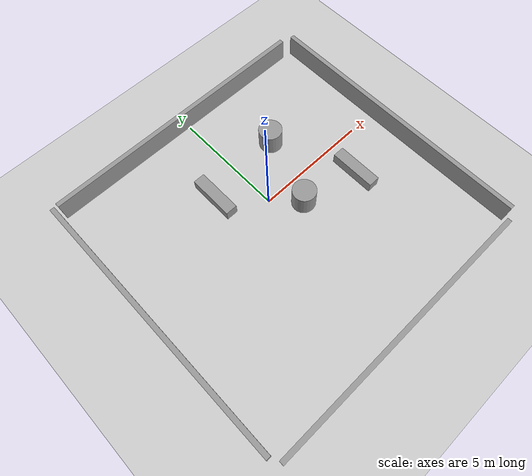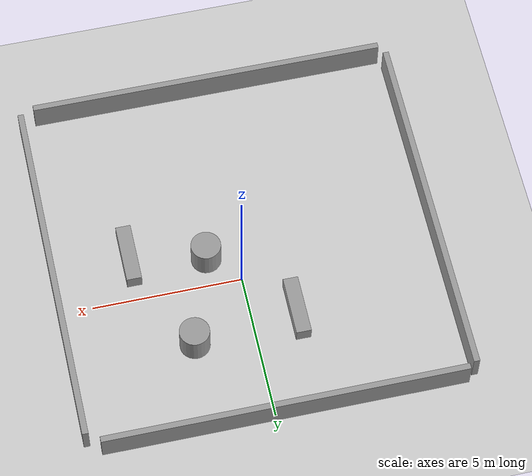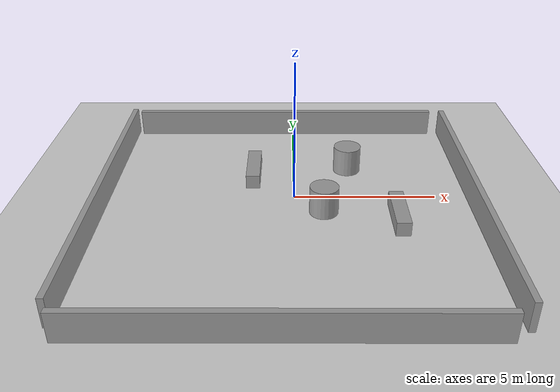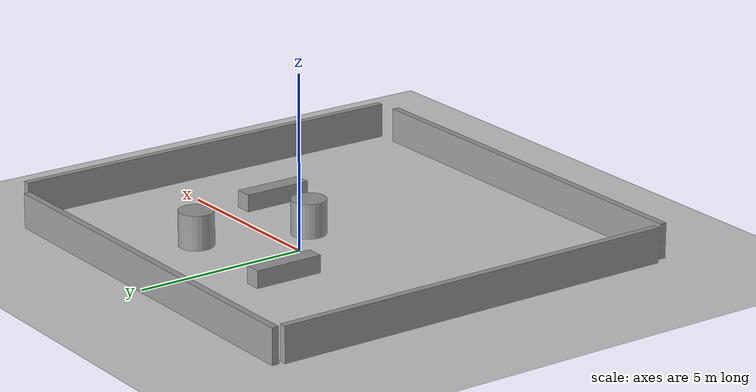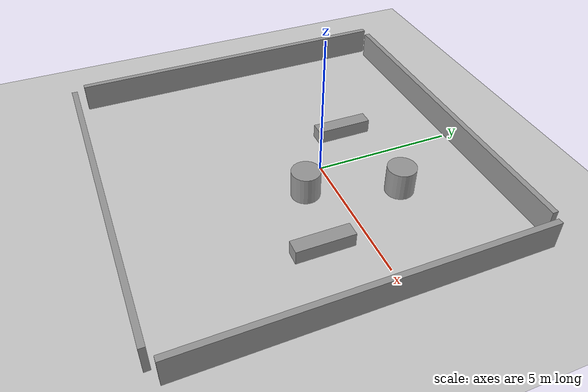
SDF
<sdf version="1.7">
 <world name="default">
  <scene><ambient>0.4 0.4 0.4 1</ambient><background>0.7 0.7 0.7 1</background><shadows>1</shadows></scene>
  <light name="sun" type="directional">
   <pose>0 0 10 0 -0 0</pose>
   <diffuse>0.8 0.8 0.8 1</diffuse>
   <specular>0.2 0.2 0.2 1</specular>
   <attenuation>
    <range>1000</range>
    <constant>0.9</constant>
    <linear>0.01</linear>
    <quadratic>0.001</quadratic>
   </attenuation>
   <direction>-0.5 0.1 -0.9</direction>
   <spot><inner_angle>0</inner_angle><outer_angle>0</outer_angle><falloff>0</falloff></spot>
  </light>
  <model name="ground_plane">
   <static>1</static>
   <link name="link">
    <collision name="collision">
     <geometry><plane><normal>0 0 1</normal><size>100 100</size></plane></geometry>
     <surface>
      <contact><collide_bitmask>65535</collide_bitmask></contact>
      <friction><ode><mu>100</mu><mu2>50</mu2></ode></friction>
     </surface>
    </collision>
    <visual name="visual">
     <cast_shadows>0</cast_shadows>
     <geometry><plane><normal>0 0 1</normal><size>100 100</size></plane></geometry>
     <material>
      <script><uri>file://media/materials/scripts/gazebo.material</uri><name>Gazebo/Grey</name></script>
     </material>
    </visual>
   </link>
  </model>
  <physics type="ode">
   <real_time_update_rate>1000</real_time_update_rate>
   <max_step_size>0.001</max_step_size>
   <real_time_factor>1</real_time_factor>
   <ode>
    <solver>
     <type>quick</type>
     <iters>150</iters>
     <precon_iters>0</precon_iters>
     <sor>1.4</sor>
     <use_dynamic_moi_rescaling>1</use_dynamic_moi_rescaling>
    </solver>
    <constraints>
     <cfm>1e-05</cfm>
     <erp>0.2</erp>
     <contact_max_correcting_vel>2000</contact_max_correcting_vel>
     <contact_surface_layer>0.01</contact_surface_layer>
    </constraints>
   </ode>
  </physics>
  <gravity>0 0 -9.8</gravity>
  <magnetic_field>6e-06 2.3e-05 -4.2e-05</magnetic_field>
  <atmosphere type="adiabatic"/>
  <spherical_coordinates>
   <surface_model>EARTH_WGS84</surface_model>
   <latitude_deg>0</latitude_deg>
   <longitude_deg>0</longitude_deg>
   <elevation>0</elevation>
   <heading_deg>0</heading_deg>
  </spherical_coordinates>
  <model name="grey_wall_1">
   <link name="link">
    <pose>0 0 1.4 0 -0 0</pose>
    <inertial>
     <mass>1</mass>
     <inertia><ixx>1</ixx><ixy>0</ixy><ixz>0</ixz><iyy>1</iyy><iyz>0</iyz><izz>1</izz></inertia>
    </inertial>
    <visual name="visual">
     <cast_shadows>0</cast_shadows>
     <geometry><box><size>12 0.2 1</size></box></geometry>
     <material>
      <script>
       <uri>model://grey_wall/materials/scripts</uri>
       <uri>model://grey_wall/materials/textures</uri>
       <name>vrc/grey_wall</name>
      </script>
      <shader type="pixel"><normal_map>__default__</normal_map></shader>
      <ambient>1 1 1 1</ambient>
      <diffuse>1 1 1 1</diffuse>
      <specular>0 0 0 1</specular>
      <emissive>0 0 0 1</emissive>
     </material>
    </visual>
    <collision name="collision">
     <geometry><box><size>12 0.2 1</size></box></geometry>
     <surface>
      <friction>
       <ode><mu>1</mu><mu2>1</mu2><fdir1>0 0 0</fdir1><slip1>0</slip1><slip2>0</slip2></ode>
       <torsional>
        <coefficient>1</coefficient>
        <patch_radius>0</patch_radius>
        <surface_radius>0</surface_radius>
        <use_patch_radius>1</use_patch_radius>
        <ode><slip>0</slip></ode>
       </torsional>
      </friction>
      <bounce><restitution_coefficient>0</restitution_coefficient><threshold>1e+06</threshold></bounce>
      <contact>
       <collide_without_contact>0</collide_without_contact>
       <collide_without_contact_bitmask>1</collide_without_contact_bitmask>
       <collide_bitmask>1</collide_bitmask>
       <ode>
        <soft_cfm>0</soft_cfm>
        <soft_erp>0.2</soft_erp>
        <kp>1e+13</kp>
        <kd>1</kd>
        <max_vel>0.01</max_vel>
        <min_depth>0</min_depth>
       </ode>
       <bullet>
        <split_impulse>1</split_impulse>
        <split_impulse_penetration_threshold>-0.01</split_impulse_penetration_threshold>
        <soft_cfm>0</soft_cfm>
        <soft_erp>0.2</soft_erp>
        <kp>1e+13</kp>
        <kd>1</kd>
       </bullet>
      </contact>
     </surface>
    </collision>
   </link>
   <static>1</static>
   <pose>-0.343254 5.11345 -0.824132 0 -0 0</pose>
  </model>
  <model name="grey_wall_1_clone">
   <link name="link">
    <pose>0 0 1.4 0 -0 0</pose>
    <inertial>
     <mass>1</mass>
     <inertia><ixx>1</ixx><ixy>0</ixy><ixz>0</ixz><iyy>1</iyy><iyz>0</iyz><izz>1</izz></inertia>
    </inertial>
    <visual name="visual">
     <cast_shadows>0</cast_shadows>
     <geometry><box><size>12 0.2 1</size></box></geometry>
     <material>
      <script>
       <uri>model://grey_wall/materials/scripts</uri>
       <uri>model://grey_wall/materials/textures</uri>
       <name>vrc/grey_wall</name>
      </script>
      <shader type="pixel"><normal_map>__default__</normal_map></shader>
      <ambient>1 1 1 1</ambient>
      <diffuse>1 1 1 1</diffuse>
      <specular>0 0 0 1</specular>
      <emissive>0 0 0 1</emissive>
     </material>
    </visual>
    <collision name="collision">
     <geometry><box><size>12 0.2 1</size></box></geometry>
     <surface>
      <friction>
       <ode><mu>1</mu><mu2>1</mu2><fdir1>0 0 0</fdir1><slip1>0</slip1><slip2>0</slip2></ode>
       <torsional>
        <coefficient>1</coefficient>
        <patch_radius>0</patch_radius>
        <surface_radius>0</surface_radius>
        <use_patch_radius>1</use_patch_radius>
        <ode><slip>0</slip></ode>
       </torsional>
      </friction>
      <bounce><restitution_coefficient>0</restitution_coefficient><threshold>1e+06</threshold></bounce>
      <contact>
       <collide_without_contact>0</collide_without_contact>
       <collide_without_contact_bitmask>1</collide_without_contact_bitmask>
       <collide_bitmask>1</collide_bitmask>
       <ode>
        <soft_cfm>0</soft_cfm>
        <soft_erp>0.2</soft_erp>
        <kp>1e+13</kp>
        <kd>1</kd>
        <max_vel>0.01</max_vel>
        <min_depth>0</min_depth>
       </ode>
       <bullet>
        <split_impulse>1</split_impulse>
        <split_impulse_penetration_threshold>-0.01</split_impulse_penetration_threshold>
        <soft_cfm>0</soft_cfm>
        <soft_erp>0.2</soft_erp>
        <kp>1e+13</kp>
        <kd>1</kd>
       </bullet>
      </contact>
     </surface>
    </collision>
   </link>
   <static>1</static>
   <pose>-0.36456 -7.3355 -0.763552 0 -0 0</pose>
  </model>
  <model name="grey_wall_1_clone_0">
   <link name="link">
    <pose>0 0 1.4 0 -0 0</pose>
    <inertial>
     <mass>1</mass>
     <inertia><ixx>1</ixx><ixy>0</ixy><ixz>0</ixz><iyy>1</iyy><iyz>0</iyz><izz>1</izz></inertia>
    </inertial>
    <visual name="visual">
     <cast_shadows>0</cast_shadows>
     <geometry><box><size>12 0.2 1</size></box></geometry>
     <material>
      <script>
       <uri>model://grey_wall/materials/scripts</uri>
       <uri>model://grey_wall/materials/textures</uri>
       <name>vrc/grey_wall</name>
      </script>
      <shader type="pixel"><normal_map>__default__</normal_map></shader>
      <ambient>1 1 1 1</ambient>
      <diffuse>1 1 1 1</diffuse>
      <specular>0 0 0 1</specular>
      <emissive>0 0 0 1</emissive>
     </material>
    </visual>
    <collision name="collision">
     <geometry><box><size>12 0.2 1</size></box></geometry>
     <surface>
      <friction>
       <ode><mu>1</mu><mu2>1</mu2><fdir1>0 0 0</fdir1><slip1>0</slip1><slip2>0</slip2></ode>
       <torsional>
        <coefficient>1</coefficient>
        <patch_radius>0</patch_radius>
        <surface_radius>0</surface_radius>
        <use_patch_radius>1</use_patch_radius>
        <ode><slip>0</slip></ode>
       </torsional>
      </friction>
      <bounce><restitution_coefficient>0</restitution_coefficient><threshold>1e+06</threshold></bounce>
      <contact>
       <collide_without_contact>0</collide_without_contact>
       <collide_without_contact_bitmask>1</collide_without_contact_bitmask>
       <collide_bitmask>1</collide_bitmask>
       <ode>
        <soft_cfm>0</soft_cfm>
        <soft_erp>0.2</soft_erp>
        <kp>1e+13</kp>
        <kd>1</kd>
        <max_vel>0.01</max_vel>
        <min_depth>0</min_depth>
       </ode>
       <bullet>
        <split_impulse>1</split_impulse>
        <split_impulse_penetration_threshold>-0.01</split_impulse_penetration_threshold>
        <soft_cfm>0</soft_cfm>
        <soft_erp>0.2</soft_erp>
        <kp>1e+13</kp>
        <kd>1</kd>
       </bullet>
      </contact>
     </surface>
    </collision>
   </link>
   <static>1</static>
   <pose>-6.55257 -0.953326 -0.707581 0 -0 1.57157</pose>
  </model>
  <model name="grey_wall_1_clone_0_clone">
   <link name="link">
    <pose>0 0 1.4 0 -0 0</pose>
    <inertial>
     <mass>1</mass>
     <inertia><ixx>1</ixx><ixy>0</ixy><ixz>0</ixz><iyy>1</iyy><iyz>0</iyz><izz>1</izz></inertia>
    </inertial>
    <visual name="visual">
     <cast_shadows>0</cast_shadows>
     <geometry><box><size>12 0.2 1</size></box></geometry>
     <material>
      <script>
       <uri>model://grey_wall/materials/scripts</uri>
       <uri>model://grey_wall/materials/textures</uri>
       <name>vrc/grey_wall</name>
      </script>
      <shader type="pixel"><normal_map>__default__</normal_map></shader>
      <ambient>1 1 1 1</ambient>
      <diffuse>1 1 1 1</diffuse>
      <specular>0 0 0 1</specular>
      <emissive>0 0 0 1</emissive>
     </material>
    </visual>
    <collision name="collision">
     <geometry><box><size>12 0.2 1</size></box></geometry>
     <surface>
      <friction>
       <ode><mu>1</mu><mu2>1</mu2><fdir1>0 0 0</fdir1><slip1>0</slip1><slip2>0</slip2></ode>
       <torsional>
        <coefficient>1</coefficient>
        <patch_radius>0</patch_radius>
        <surface_radius>0</surface_radius>
        <use_patch_radius>1</use_patch_radius>
        <ode><slip>0</slip></ode>
       </torsional>
      </friction>
      <bounce><restitution_coefficient>0</restitution_coefficient><threshold>1e+06</threshold></bounce>
      <contact>
       <collide_without_contact>0</collide_without_contact>
       <collide_without_contact_bitmask>1</collide_without_contact_bitmask>
       <collide_bitmask>1</collide_bitmask>
       <ode>
        <soft_cfm>0</soft_cfm>
        <soft_erp>0.2</soft_erp>
        <kp>1e+13</kp>
        <kd>1</kd>
        <max_vel>0.01</max_vel>
        <min_depth>0</min_depth>
       </ode>
       <bullet>
        <split_impulse>1</split_impulse>
        <split_impulse_penetration_threshold>-0.01</split_impulse_penetration_threshold>
        <soft_cfm>0</soft_cfm>
        <soft_erp>0.2</soft_erp>
        <kp>1e+13</kp>
        <kd>1</kd>
       </bullet>
      </contact>
     </surface>
    </collision>
   </link>
   <static>1</static>
   <pose>6.0928 -1.11333 -0.68855 0 -0 1.57157</pose>
  </model>
  <model name="grey_wall">
   <link name="link">
    <pose>0 0 1.4 0 -0 0</pose>
    <inertial>
     <mass>1</mass>
     <inertia><ixx>1</ixx><ixy>0</ixy><ixz>0</ixz><iyy>1</iyy><iyz>0</iyz><izz>1</izz></inertia>
    </inertial>
    <visual name="visual">
     <cast_shadows>0</cast_shadows>
     <geometry><box><size>0.5 2 0.5</size></box></geometry>
     <material>
      <script>
       <uri>model://grey_wall/materials/scripts</uri>
       <uri>model://grey_wall/materials/textures</uri>
       <name>vrc/grey_wall</name>
      </script>
      <shader type="pixel"><normal_map>__default__</normal_map></shader>
      <ambient>1 1 1 1</ambient>
      <diffuse>1 1 1 1</diffuse>
      <specular>0 0 0 1</specular>
      <emissive>0 0 0 1</emissive>
     </material>
    </visual>
    <collision name="collision">
     <geometry><box><size>0.5 2 0.5</size></box></geometry>
     <surface>
      <friction>
       <ode><mu>1</mu><mu2>1</mu2><fdir1>0 0 0</fdir1><slip1>0</slip1><slip2>0</slip2></ode>
       <torsional>
        <coefficient>1</coefficient>
        <patch_radius>0</patch_radius>
        <surface_radius>0</surface_radius>
        <use_patch_radius>1</use_patch_radius>
        <ode><slip>0</slip></ode>
       </torsional>
      </friction>
      <bounce><restitution_coefficient>0</restitution_coefficient><threshold>1e+06</threshold></bounce>
      <contact>
       <collide_without_contact>0</collide_without_contact>
       <collide_without_contact_bitmask>1</collide_without_contact_bitmask>
       <collide_bitmask>1</collide_bitmask>
       <ode>
        <soft_cfm>0</soft_cfm>
        <soft_erp>0.2</soft_erp>
        <kp>1e+13</kp>
        <kd>1</kd>
        <max_vel>0.01</max_vel>
        <min_depth>0</min_depth>
       </ode>
       <bullet>
        <split_impulse>1</split_impulse>
        <split_impulse_penetration_threshold>-0.01</split_impulse_penetration_threshold>
        <soft_cfm>0</soft_cfm>
        <soft_erp>0.2</soft_erp>
        <kp>1e+13</kp>
        <kd>1</kd>
       </bullet>
      </contact>
     </surface>
    </collision>
   </link>
   <static>1</static>
   <pose>3.5 -1.52387 -1.10748 0 -0 0</pose>
  </model>
  <model name="grey_wall_clone">
   <link name="link">
    <pose>0 0 1.4 0 -0 0</pose>
    <inertial>
     <mass>1</mass>
     <inertia><ixx>1</ixx><ixy>0</ixy><ixz>0</ixz><iyy>1</iyy><iyz>0</iyz><izz>1</izz></inertia>
    </inertial>
    <visual name="visual">
     <cast_shadows>0</cast_shadows>
     <geometry><box><size>0.5 2 0.5</size></box></geometry>
     <material>
      <script>
       <uri>model://grey_wall/materials/scripts</uri>
       <uri>model://grey_wall/materials/textures</uri>
       <name>vrc/grey_wall</name>
      </script>
      <shader type="pixel"><normal_map>__default__</normal_map></shader>
      <ambient>1 1 1 1</ambient>
      <diffuse>1 1 1 1</diffuse>
      <specular>0 0 0 1</specular>
      <emissive>0 0 0 1</emissive>
     </material>
    </visual>
    <collision name="collision">
     <geometry><box><size>0.5 2 0.5</size></box></geometry>
     <surface>
      <friction>
       <ode><mu>1</mu><mu2>1</mu2><fdir1>0 0 0</fdir1><slip1>0</slip1><slip2>0</slip2></ode>
       <torsional>
        <coefficient>1</coefficient>
        <patch_radius>0</patch_radius>
        <surface_radius>0</surface_radius>
        <use_patch_radius>1</use_patch_radius>
        <ode><slip>0</slip></ode>
       </torsional>
      </friction>
      <bounce><restitution_coefficient>0</restitution_coefficient><threshold>1e+06</threshold></bounce>
      <contact>
       <collide_without_contact>0</collide_without_contact>
       <collide_without_contact_bitmask>1</collide_without_contact_bitmask>
       <collide_bitmask>1</collide_bitmask>
       <ode>
        <soft_cfm>0</soft_cfm>
        <soft_erp>0.2</soft_erp>
        <kp>1e+13</kp>
        <kd>1</kd>
        <max_vel>0.01</max_vel>
        <min_depth>0</min_depth>
       </ode>
       <bullet>
        <split_impulse>1</split_impulse>
        <split_impulse_penetration_threshold>-0.01</split_impulse_penetration_threshold>
        <soft_cfm>0</soft_cfm>
        <soft_erp>0.2</soft_erp>
        <kp>1e+13</kp>
        <kd>1</kd>
       </bullet>
      </contact>
     </surface>
    </collision>
   </link>
   <static>1</static>
   <pose>-1.5 1.5369 -1.10748 0 -0 0</pose>
  </model>
  <model name="unit_cylinder">
   <link name="link">
    <inertial>
     <mass>1</mass>
     <inertia><ixx>0.145833</ixx><ixy>0</ixy><ixz>0</ixz><iyy>0.145833</iyy><iyz>0</iyz><izz>0.125</izz></inertia>
    </inertial>
    <visual name="visual">
     <geometry><cylinder><radius>0.5</radius><length>1</length></cylinder></geometry>
     <material>
      <script><name>Gazebo/Grey</name><uri>file://media/materials/scripts/gazebo.material</uri></script>
      <shader type="pixel"><normal_map>__default__</normal_map></shader>
      <diffuse>1 1 1 0</diffuse>
      <ambient>1 1 1 1</ambient>
      <specular>0.01 0.01 0.01 1</specular>
      <emissive>0 0 0 1</emissive>
     </material>
    </visual>
    <collision name="collision">
     <geometry><cylinder><radius>0.5</radius><length>1</length></cylinder></geometry>
     <surface>
      <friction>
       <ode><mu>1</mu><mu2>1</mu2><fdir1>0 0 0</fdir1><slip1>0</slip1><slip2>0</slip2></ode>
       <torsional>
        <coefficient>1</coefficient>
        <patch_radius>0</patch_radius>
        <surface_radius>0</surface_radius>
        <use_patch_radius>1</use_patch_radius>
        <ode><slip>0</slip></ode>
       </torsional>
      </friction>
      <bounce><restitution_coefficient>0</restitution_coefficient><threshold>1e+06</threshold></bounce>
      <contact>
       <collide_without_contact>0</collide_without_contact>
       <collide_without_contact_bitmask>1</collide_without_contact_bitmask>
       <collide_bitmask>1</collide_bitmask>
       <ode>
        <soft_cfm>0</soft_cfm>
        <soft_erp>0.2</soft_erp>
        <kp>1e+13</kp>
        <kd>1</kd>
        <max_vel>0.01</max_vel>
        <min_depth>0</min_depth>
       </ode>
       <bullet>
        <split_impulse>1</split_impulse>
        <split_impulse_penetration_threshold>-0.01</split_impulse_penetration_threshold>
        <soft_cfm>0</soft_cfm>
        <soft_erp>0.2</soft_erp>
        <kp>1e+13</kp>
        <kd>1</kd>
       </bullet>
      </contact>
     </surface>
    </collision>
   </link>
   <static>0</static>
   <pose>0.999996 -0.999998 0.499997 -4e-06 -4e-06 -0</pose>
  </model>
  <model name="unit_cylinder_clone">
   <link name="link">
    <inertial>
     <mass>1</mass>
     <inertia><ixx>0.145833</ixx><ixy>0</ixy><ixz>0</ixz><iyy>0.145833</iyy><iyz>0</iyz><izz>0.125</izz></inertia>
    </inertial>
    <visual name="visual">
     <geometry><cylinder><radius>0.5</radius><length>1</length></cylinder></geometry>
     <material>
      <script><name>Gazebo/Grey</name><uri>file://media/materials/scripts/gazebo.material</uri></script>
      <shader type="pixel"><normal_map>__default__</normal_map></shader>
      <diffuse>1 1 1 0</diffuse>
      <ambient>1 1 1 1</ambient>
      <specular>0.01 0.01 0.01 1</specular>
      <emissive>0 0 0 1</emissive>
     </material>
    </visual>
    <collision name="collision">
     <geometry><cylinder><radius>0.5</radius><length>1</length></cylinder></geometry>
     <surface>
      <friction>
       <ode><mu>1</mu><mu2>1</mu2><fdir1>0 0 0</fdir1><slip1>0</slip1><slip2>0</slip2></ode>
       <torsional>
        <coefficient>1</coefficient>
        <patch_radius>0</patch_radius>
        <surface_radius>0</surface_radius>
        <use_patch_radius>1</use_patch_radius>
        <ode><slip>0</slip></ode>
       </torsional>
      </friction>
      <bounce><restitution_coefficient>0</restitution_coefficient><threshold>1e+06</threshold></bounce>
      <contact>
       <collide_without_contact>0</collide_without_contact>
       <collide_without_contact_bitmask>1</collide_without_contact_bitmask>
       <collide_bitmask>1</collide_bitmask>
       <ode>
        <soft_cfm>0</soft_cfm>
        <soft_erp>0.2</soft_erp>
        <kp>1e+13</kp>
        <kd>1</kd>
        <max_vel>0.01</max_vel>
        <min_depth>0</min_depth>
       </ode>
       <bullet>
        <split_impulse>1</split_impulse>
        <split_impulse_penetration_threshold>-0.01</split_impulse_penetration_threshold>
        <soft_cfm>0</soft_cfm>
        <soft_erp>0.2</soft_erp>
        <kp>1e+13</kp>
        <kd>1</kd>
       </bullet>
      </contact>
     </surface>
    </collision>
   </link>
   <static>0</static>
   <pose>2 2 0.499997 -4e-06 -4e-06 -0</pose>
  </model>
 </world>
</sdf>
